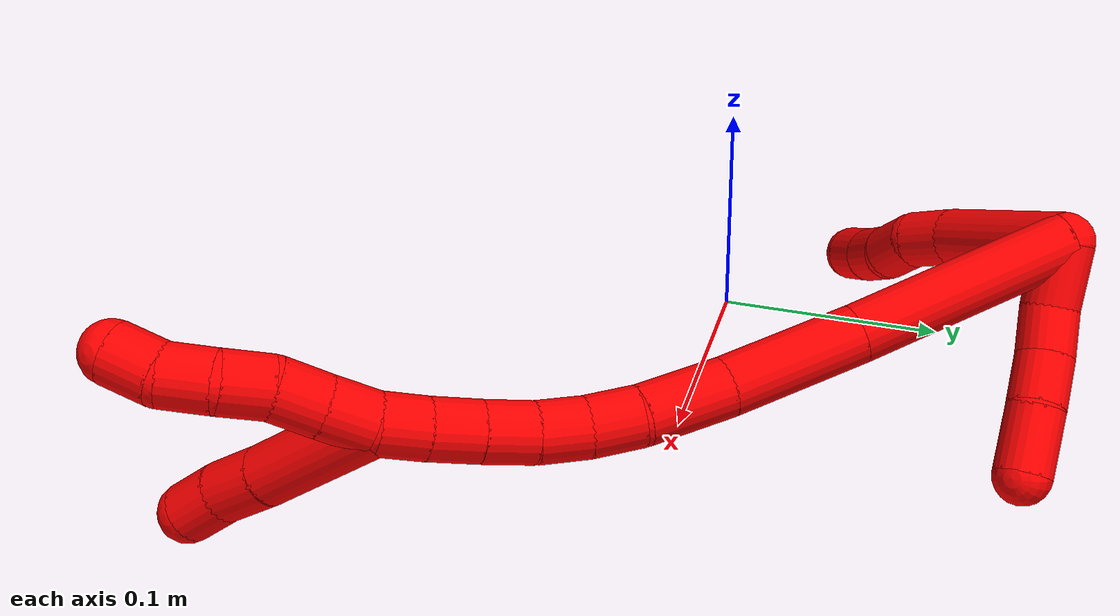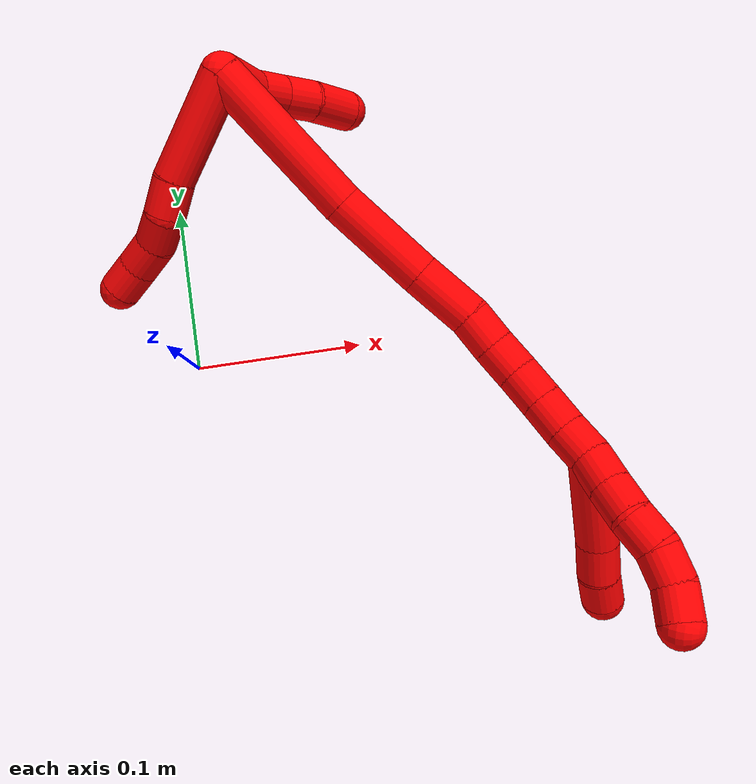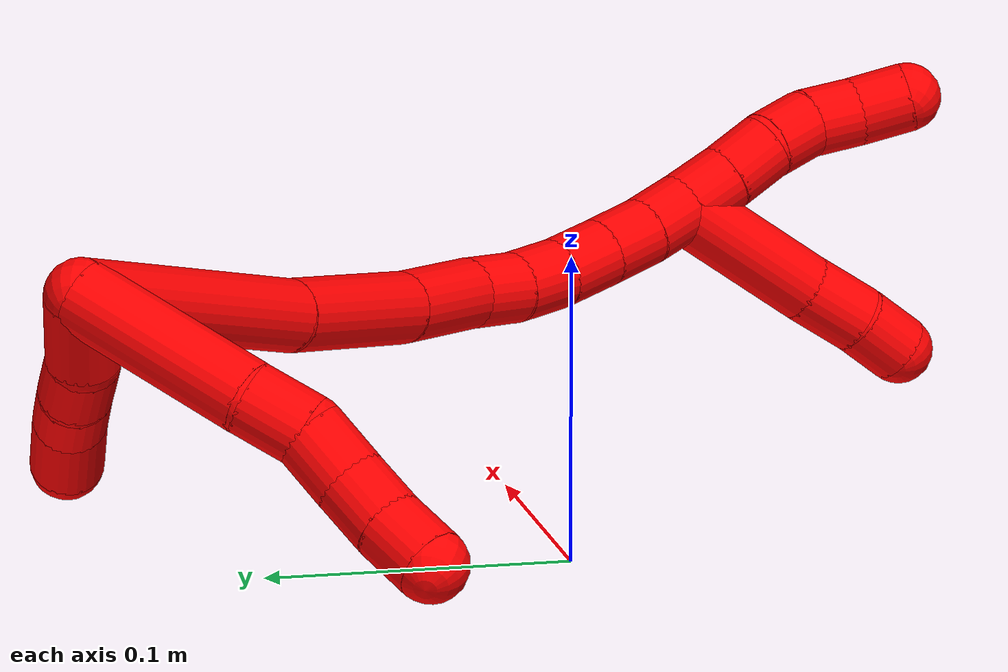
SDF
<sdf version="1.7">
 <world name="default">
  <model name="2">
   <static>0</static>
   <link name="2">
    <collision name="collision-cylinder-e_1_2_8">
     <pose>-0.007364 -0.029194 -0.014034 2.01891 -0.223541 -0.353261</pose>
     <geometry><cylinder><radius>0.0125</radius><length>0.066437</length></cylinder></geometry>
     <surface>
      <friction><ode><mu>1.16</mu><mu2>1.16</mu2><slip1>0</slip1><slip2>0</slip2></ode></friction>
      <contact><ode><kp>1e+06</kp><kd>1</kd><max_vel>0</max_vel><min_depth>0.001</min_depth></ode></contact>
     </surface>
    </collision>
    <visual name="visual-cylinder-e_1_2_8">
     <pose>-0.007364 -0.029194 -0.014034 2.01891 -0.223541 -0.353261</pose>
     <geometry><cylinder><radius>0.0125</radius><length>0.066437</length></cylinder></geometry>
     <material><ambient>1 0 0 1</ambient></material>
    </visual>
    <collision name="collision-cylinder-e_2_8_9">
     <pose>-0.016316 -0.068767 -0.031329 1.87513 -0.144906 -0.197106</pose>
     <geometry><cylinder><radius>0.0125</radius><length>0.021989</length></cylinder></geometry>
     <surface>
      <friction><ode><mu>1.16</mu><mu2>1.16</mu2><slip1>0</slip1><slip2>0</slip2></ode></friction>
      <contact><ode><kp>1e+06</kp><kd>1</kd><max_vel>0</max_vel><min_depth>0.001</min_depth></ode></contact>
     </surface>
    </collision>
    <visual name="visual-cylinder-e_2_8_9">
     <pose>-0.016316 -0.068767 -0.031329 1.87513 -0.144906 -0.197106</pose>
     <geometry><cylinder><radius>0.0125</radius><length>0.021989</length></cylinder></geometry>
     <material><ambient>1 0 0 1</ambient></material>
    </visual>
    <collision name="collision-cylinder-e_3_9_10">
     <pose>-0.016791 -0.088171 -0.039972 2.1086 0.105474 0.185359</pose>
     <geometry><cylinder><radius>0.0125</radius><length>0.021133</length></cylinder></geometry>
     <surface>
      <friction><ode><mu>1.16</mu><mu2>1.16</mu2><slip1>0</slip1><slip2>0</slip2></ode></friction>
      <contact><ode><kp>1e+06</kp><kd>1</kd><max_vel>0</max_vel><min_depth>0.001</min_depth></ode></contact>
     </surface>
    </collision>
    <visual name="visual-cylinder-e_3_9_10">
     <pose>-0.016791 -0.088171 -0.039972 2.1086 0.105474 0.185359</pose>
     <geometry><cylinder><radius>0.0125</radius><length>0.021133</length></cylinder></geometry>
     <material><ambient>1 0 0 1</ambient></material>
    </visual>
    <collision name="collision-cylinder-e_4_10_11">
     <pose>-0.016672 -0.10476 -0.05214 2.30199 -0.097495 -0.217744</pose>
     <geometry><cylinder><radius>0.0125</radius><length>0.02042</length></cylinder></geometry>
     <surface>
      <friction><ode><mu>1.16</mu><mu2>1.16</mu2><slip1>0</slip1><slip2>0</slip2></ode></friction>
      <contact><ode><kp>1e+06</kp><kd>1</kd><max_vel>0</max_vel><min_depth>0.001</min_depth></ode></contact>
     </surface>
    </collision>
    <visual name="visual-cylinder-e_4_10_11">
     <pose>-0.016672 -0.10476 -0.05214 2.30199 -0.097495 -0.217744</pose>
     <geometry><cylinder><radius>0.0125</radius><length>0.02042</length></cylinder></geometry>
     <material><ambient>1 0 0 1</ambient></material>
    </visual>
    <collision name="collision-cylinder-e_5_11_6">
     <pose>-0.019588 -0.119787 -0.065314 2.27879 -0.19323 -0.415024</pose>
     <geometry><cylinder><radius>0.0125</radius><length>0.02002</length></cylinder></geometry>
     <surface>
      <friction><ode><mu>1.16</mu><mu2>1.16</mu2><slip1>0</slip1><slip2>0</slip2></ode></friction>
      <contact><ode><kp>1e+06</kp><kd>1</kd><max_vel>0</max_vel><min_depth>0.001</min_depth></ode></contact>
     </surface>
    </collision>
    <visual name="visual-cylinder-e_5_11_6">
     <pose>-0.019588 -0.119787 -0.065314 2.27879 -0.19323 -0.415024</pose>
     <geometry><cylinder><radius>0.0125</radius><length>0.02002</length></cylinder></geometry>
     <material><ambient>1 0 0 1</ambient></material>
    </visual>
    <collision name="collision-cylinder-e_1_2_12">
     <pose>0.012885 -0.005692 0.000826 1.42664 1.15093 1.02302</pose>
     <geometry><cylinder><radius>0.0125</radius><length>0.028221</length></cylinder></geometry>
     <surface>
      <friction><ode><mu>1.16</mu><mu2>1.16</mu2><slip1>0</slip1><slip2>0</slip2></ode></friction>
      <contact><ode><kp>1e+06</kp><kd>1</kd><max_vel>0</max_vel><min_depth>0.001</min_depth></ode></contact>
     </surface>
    </collision>
    <visual name="visual-cylinder-e_1_2_12">
     <pose>0.012885 -0.005692 0.000826 1.42664 1.15093 1.02302</pose>
     <geometry><cylinder><radius>0.0125</radius><length>0.028221</length></cylinder></geometry>
     <material><ambient>1 0 0 1</ambient></material>
    </visual>
    <collision name="collision-cylinder-e_2_12_13">
     <pose>0.035568 -0.013512 0.004527 0.637129 1.22084 0.453482</pose>
     <geometry><cylinder><radius>0.0125</radius><length>0.020862</length></cylinder></geometry>
     <surface>
      <friction><ode><mu>1.16</mu><mu2>1.16</mu2><slip1>0</slip1><slip2>0</slip2></ode></friction>
      <contact><ode><kp>1e+06</kp><kd>1</kd><max_vel>0</max_vel><min_depth>0.001</min_depth></ode></contact>
     </surface>
    </collision>
    <visual name="visual-cylinder-e_2_12_13">
     <pose>0.035568 -0.013512 0.004527 0.637129 1.22084 0.453482</pose>
     <geometry><cylinder><radius>0.0125</radius><length>0.020862</length></cylinder></geometry>
     <material><ambient>1 0 0 1</ambient></material>
    </visual>
    <collision name="collision-cylinder-e_3_13_14">
     <pose>0.05521 -0.017964 0.012055 0.463327 1.08468 0.282419</pose>
     <geometry><cylinder><radius>0.0125</radius><length>0.022266</length></cylinder></geometry>
     <surface>
      <friction><ode><mu>1.16</mu><mu2>1.16</mu2><slip1>0</slip1><slip2>0</slip2></ode></friction>
      <contact><ode><kp>1e+06</kp><kd>1</kd><max_vel>0</max_vel><min_depth>0.001</min_depth></ode></contact>
     </surface>
    </collision>
    <visual name="visual-cylinder-e_3_13_14">
     <pose>0.05521 -0.017964 0.012055 0.463327 1.08468 0.282419</pose>
     <geometry><cylinder><radius>0.0125</radius><length>0.022266</length></cylinder></geometry>
     <material><ambient>1 0 0 1</ambient></material>
    </visual>
    <collision name="collision-cylinder-e_4_14_5">
     <pose>0.078057 -0.024341 0.021148 0.739761 1.13773 0.486002</pose>
     <geometry><cylinder><radius>0.0125</radius><length>0.028651</length></cylinder></geometry>
     <surface>
      <friction><ode><mu>1.16</mu><mu2>1.16</mu2><slip1>0</slip1><slip2>0</slip2></ode></friction>
      <contact><ode><kp>1e+06</kp><kd>1</kd><max_vel>0</max_vel><min_depth>0.001</min_depth></ode></contact>
     </surface>
    </collision>
    <visual name="visual-cylinder-e_4_14_5">
     <pose>0.078057 -0.024341 0.021148 0.739761 1.13773 0.486002</pose>
     <geometry><cylinder><radius>0.0125</radius><length>0.028651</length></cylinder></geometry>
     <material><ambient>1 0 0 1</ambient></material>
    </visual>
    <collision name="collision-cylinder-e_1_2_15">
     <pose>0.011339 -0.036468 0.031037 0.865673 0.23251 0.107815</pose>
     <geometry><cylinder><radius>0.0125</radius><length>0.098423</length></cylinder></geometry>
     <surface>
      <friction><ode><mu>1.16</mu><mu2>1.16</mu2><slip1>0</slip1><slip2>0</slip2></ode></friction>
      <contact><ode><kp>1e+06</kp><kd>1</kd><max_vel>0</max_vel><min_depth>0.001</min_depth></ode></contact>
     </surface>
    </collision>
    <visual name="visual-cylinder-e_1_2_15">
     <pose>0.011339 -0.036468 0.031037 0.865673 0.23251 0.107815</pose>
     <geometry><cylinder><radius>0.0125</radius><length>0.098423</length></cylinder></geometry>
     <material><ambient>1 0 0 1</ambient></material>
    </visual>
    <collision name="collision-cylinder-e_2_15_16">
     <pose>0.028599 -0.092847 0.083639 0.745549 0.19902 0.078047</pose>
     <geometry><cylinder><radius>0.0125</radius><length>0.059887</length></cylinder></geometry>
     <surface>
      <friction><ode><mu>1.16</mu><mu2>1.16</mu2><slip1>0</slip1><slip2>0</slip2></ode></friction>
      <contact><ode><kp>1e+06</kp><kd>1</kd><max_vel>0</max_vel><min_depth>0.001</min_depth></ode></contact>
     </surface>
    </collision>
    <visual name="visual-cylinder-e_2_15_16">
     <pose>0.028599 -0.092847 0.083639 0.745549 0.19902 0.078047</pose>
     <geometry><cylinder><radius>0.0125</radius><length>0.059887</length></cylinder></geometry>
     <material><ambient>1 0 0 1</ambient></material>
    </visual>
    <collision name="collision-cylinder-e_3_16_17">
     <pose>0.037159 -0.124322 0.119567 0.677856 0.142206 0.050206</pose>
     <geometry><cylinder><radius>0.0125</radius><length>0.037253</length></cylinder></geometry>
     <surface>
      <friction><ode><mu>1.16</mu><mu2>1.16</mu2><slip1>0</slip1><slip2>0</slip2></ode></friction>
      <contact><ode><kp>1e+06</kp><kd>1</kd><max_vel>0</max_vel><min_depth>0.001</min_depth></ode></contact>
     </surface>
    </collision>
    <visual name="visual-cylinder-e_3_16_17">
     <pose>0.037159 -0.124322 0.119567 0.677856 0.142206 0.050206</pose>
     <geometry><cylinder><radius>0.0125</radius><length>0.037253</length></cylinder></geometry>
     <material><ambient>1 0 0 1</ambient></material>
    </visual>
    <collision name="collision-cylinder-e_4_17_18">
     <pose>0.040118 -0.143812 0.141217 0.827374 0.029666 0.013025</pose>
     <geometry><cylinder><radius>0.0125</radius><length>0.021545</length></cylinder></geometry>
     <surface>
      <friction><ode><mu>1.16</mu><mu2>1.16</mu2><slip1>0</slip1><slip2>0</slip2></ode></friction>
      <contact><ode><kp>1e+06</kp><kd>1</kd><max_vel>0</max_vel><min_depth>0.001</min_depth></ode></contact>
     </surface>
    </collision>
    <visual name="visual-cylinder-e_4_17_18">
     <pose>0.040118 -0.143812 0.141217 0.827374 0.029666 0.013025</pose>
     <geometry><cylinder><radius>0.0125</radius><length>0.021545</length></cylinder></geometry>
     <material><ambient>1 0 0 1</ambient></material>
    </visual>
    <collision name="collision-cylinder-e_5_18_19">
     <pose>0.039734 -0.158612 0.156272 0.724367 -0.067732 -0.025672</pose>
     <geometry><cylinder><radius>0.0125</radius><length>0.02079</length></cylinder></geometry>
     <surface>
      <friction><ode><mu>1.16</mu><mu2>1.16</mu2><slip1>0</slip1><slip2>0</slip2></ode></friction>
      <contact><ode><kp>1e+06</kp><kd>1</kd><max_vel>0</max_vel><min_depth>0.001</min_depth></ode></contact>
     </surface>
    </collision>
    <visual name="visual-cylinder-e_5_18_19">
     <pose>0.039734 -0.158612 0.156272 0.724367 -0.067732 -0.025672</pose>
     <geometry><cylinder><radius>0.0125</radius><length>0.02079</length></cylinder></geometry>
     <material><ambient>1 0 0 1</ambient></material>
    </visual>
    <collision name="collision-cylinder-e_6_19_20">
     <pose>0.037016 -0.172029 0.172153 0.678742 -0.190895 -0.067571</pose>
     <geometry><cylinder><radius>0.0125</radius><length>0.021235</length></cylinder></geometry>
     <surface>
      <friction><ode><mu>1.16</mu><mu2>1.16</mu2><slip1>0</slip1><slip2>0</slip2></ode></friction>
      <contact><ode><kp>1e+06</kp><kd>1</kd><max_vel>0</max_vel><min_depth>0.001</min_depth></ode></contact>
     </surface>
    </collision>
    <visual name="visual-cylinder-e_6_19_20">
     <pose>0.037016 -0.172029 0.172153 0.678742 -0.190895 -0.067571</pose>
     <geometry><cylinder><radius>0.0125</radius><length>0.021235</length></cylinder></geometry>
     <material><ambient>1 0 0 1</ambient></material>
    </visual>
    <collision name="collision-cylinder-e_7_20_21">
     <pose>0.03273 -0.184905 0.188189 0.674264 -0.220384 -0.077523</pose>
     <geometry><cylinder><radius>0.0125</radius><length>0.020784</length></cylinder></geometry>
     <surface>
      <friction><ode><mu>1.16</mu><mu2>1.16</mu2><slip1>0</slip1><slip2>0</slip2></ode></friction>
      <contact><ode><kp>1e+06</kp><kd>1</kd><max_vel>0</max_vel><min_depth>0.001</min_depth></ode></contact>
     </surface>
    </collision>
    <visual name="visual-cylinder-e_7_20_21">
     <pose>0.03273 -0.184905 0.188189 0.674264 -0.220384 -0.077523</pose>
     <geometry><cylinder><radius>0.0125</radius><length>0.020784</length></cylinder></geometry>
     <material><ambient>1 0 0 1</ambient></material>
    </visual>
    <collision name="collision-cylinder-e_8_21_1">
     <pose>0.027861 -0.196681 0.204138 0.596064 -0.261586 -0.080772</pose>
     <geometry><cylinder><radius>0.0125</radius><length>0.020084</length></cylinder></geometry>
     <surface>
      <friction><ode><mu>1.16</mu><mu2>1.16</mu2><slip1>0</slip1><slip2>0</slip2></ode></friction>
      <contact><ode><kp>1e+06</kp><kd>1</kd><max_vel>0</max_vel><min_depth>0.001</min_depth></ode></contact>
     </surface>
    </collision>
    <visual name="visual-cylinder-e_8_21_1">
     <pose>0.027861 -0.196681 0.204138 0.596064 -0.261586 -0.080772</pose>
     <geometry><cylinder><radius>0.0125</radius><length>0.020084</length></cylinder></geometry>
     <material><ambient>1 0 0 1</ambient></material>
    </visual>
    <collision name="collision-cylinder-e_1_1_22">
     <pose>0.030864 -0.229743 0.213624 1.51803 0.199793 0.189582</pose>
     <geometry><cylinder><radius>0.0125</radius><length>0.056431</length></cylinder></geometry>
     <surface>
      <friction><ode><mu>1.16</mu><mu2>1.16</mu2><slip1>0</slip1><slip2>0</slip2></ode></friction>
      <contact><ode><kp>1e+06</kp><kd>1</kd><max_vel>0</max_vel><min_depth>0.001</min_depth></ode></contact>
     </surface>
    </collision>
    <visual name="visual-cylinder-e_1_1_22">
     <pose>0.030864 -0.229743 0.213624 1.51803 0.199793 0.189582</pose>
     <geometry><cylinder><radius>0.0125</radius><length>0.056431</length></cylinder></geometry>
     <material><ambient>1 0 0 1</ambient></material>
    </visual>
    <collision name="collision-cylinder-e_2_22_23">
     <pose>0.038096 -0.269012 0.215424 1.54148 0.139088 0.135081</pose>
     <geometry><cylinder><radius>0.0125</radius><length>0.023545</length></cylinder></geometry>
     <surface>
      <friction><ode><mu>1.16</mu><mu2>1.16</mu2><slip1>0</slip1><slip2>0</slip2></ode></friction>
      <contact><ode><kp>1e+06</kp><kd>1</kd><max_vel>0</max_vel><min_depth>0.001</min_depth></ode></contact>
     </surface>
    </collision>
    <visual name="visual-cylinder-e_2_22_23">
     <pose>0.038096 -0.269012 0.215424 1.54148 0.139088 0.135081</pose>
     <geometry><cylinder><radius>0.0125</radius><length>0.023545</length></cylinder></geometry>
     <material><ambient>1 0 0 1</ambient></material>
    </visual>
    <collision name="collision-cylinder-e_3_23_4">
     <pose>0.042452 -0.29027 0.216528 1.49156 0.275542 0.254766</pose>
     <geometry><cylinder><radius>0.0125</radius><length>0.020023</length></cylinder></geometry>
     <surface>
      <friction><ode><mu>1.16</mu><mu2>1.16</mu2><slip1>0</slip1><slip2>0</slip2></ode></friction>
      <contact><ode><kp>1e+06</kp><kd>1</kd><max_vel>0</max_vel><min_depth>0.001</min_depth></ode></contact>
     </surface>
    </collision>
    <visual name="visual-cylinder-e_3_23_4">
     <pose>0.042452 -0.29027 0.216528 1.49156 0.275542 0.254766</pose>
     <geometry><cylinder><radius>0.0125</radius><length>0.020023</length></cylinder></geometry>
     <material><ambient>1 0 0 1</ambient></material>
    </visual>
    <collision name="collision-cylinder-e_1_1_24">
     <pose>0.020592 -0.207416 0.21925 0.641273 -0.486111 -0.164321</pose>
     <geometry><cylinder><radius>0.0125</radius><length>0.02</length></cylinder></geometry>
     <surface>
      <friction><ode><mu>1.16</mu><mu2>1.16</mu2><slip1>0</slip1><slip2>0</slip2></ode></friction>
      <contact><ode><kp>1e+06</kp><kd>1</kd><max_vel>0</max_vel><min_depth>0.001</min_depth></ode></contact>
     </surface>
    </collision>
    <visual name="visual-cylinder-e_1_1_24">
     <pose>0.020592 -0.207416 0.21925 0.641273 -0.486111 -0.164321</pose>
     <geometry><cylinder><radius>0.0125</radius><length>0.02</length></cylinder></geometry>
     <material><ambient>1 0 0 1</ambient></material>
    </visual>
    <collision name="collision-cylinder-e_2_24_25">
     <pose>0.011099 -0.217539 0.233642 0.584545 -0.503119 -0.154352</pose>
     <geometry><cylinder><radius>0.0125</radius><length>0.02</length></cylinder></geometry>
     <surface>
      <friction><ode><mu>1.16</mu><mu2>1.16</mu2><slip1>0</slip1><slip2>0</slip2></ode></friction>
      <contact><ode><kp>1e+06</kp><kd>1</kd><max_vel>0</max_vel><min_depth>0.001</min_depth></ode></contact>
     </surface>
    </collision>
    <visual name="visual-cylinder-e_2_24_25">
     <pose>0.011099 -0.217539 0.233642 0.584545 -0.503119 -0.154352</pose>
     <geometry><cylinder><radius>0.0125</radius><length>0.02</length></cylinder></geometry>
     <material><ambient>1 0 0 1</ambient></material>
    </visual>
    <collision name="collision-cylinder-e_3_25_26">
     <pose>0.003684 -0.228112 0.248716 0.636213 -0.262301 -0.086817</pose>
     <geometry><cylinder><radius>0.0125</radius><length>0.02</length></cylinder></geometry>
     <surface>
      <friction><ode><mu>1.16</mu><mu2>1.16</mu2><slip1>0</slip1><slip2>0</slip2></ode></friction>
      <contact><ode><kp>1e+06</kp><kd>1</kd><max_vel>0</max_vel><min_depth>0.001</min_depth></ode></contact>
     </surface>
    </collision>
    <visual name="visual-cylinder-e_3_25_26">
     <pose>0.003684 -0.228112 0.248716 0.636213 -0.262301 -0.086817</pose>
     <geometry><cylinder><radius>0.0125</radius><length>0.02</length></cylinder></geometry>
     <material><ambient>1 0 0 1</ambient></material>
    </visual>
    <collision name="collision-cylinder-e_4_26_27">
     <pose>-0.001914 -0.241603 0.262041 0.948915 -0.305265 -0.157682</pose>
     <geometry><cylinder><radius>0.0125</radius><length>0.02</length></cylinder></geometry>
     <surface>
      <friction><ode><mu>1.16</mu><mu2>1.16</mu2><slip1>0</slip1><slip2>0</slip2></ode></friction>
      <contact><ode><kp>1e+06</kp><kd>1</kd><max_vel>0</max_vel><min_depth>0.001</min_depth></ode></contact>
     </surface>
    </collision>
    <visual name="visual-cylinder-e_4_26_27">
     <pose>-0.001914 -0.241603 0.262041 0.948915 -0.305265 -0.157682</pose>
     <geometry><cylinder><radius>0.0125</radius><length>0.02</length></cylinder></geometry>
     <material><ambient>1 0 0 1</ambient></material>
    </visual>
    <collision name="collision-cylinder-e_5_27_3">
     <pose>-0.01052 -0.256854 0.271118 1.13182 -0.594434 -0.384318</pose>
     <geometry><cylinder><radius>0.0125</radius><length>0.02</length></cylinder></geometry>
     <surface>
      <friction><ode><mu>1.16</mu><mu2>1.16</mu2><slip1>0</slip1><slip2>0</slip2></ode></friction>
      <contact><ode><kp>1e+06</kp><kd>1</kd><max_vel>0</max_vel><min_depth>0.001</min_depth></ode></contact>
     </surface>
    </collision>
    <visual name="visual-cylinder-e_5_27_3">
     <pose>-0.01052 -0.256854 0.271118 1.13182 -0.594434 -0.384318</pose>
     <geometry><cylinder><radius>0.0125</radius><length>0.02</length></cylinder></geometry>
     <material><ambient>1 0 0 1</ambient></material>
    </visual>
    <collision name="collision-sphere-3">
     <pose>-0.016121 -0.264353 0.274639 0 -0 0</pose>
     <geometry><sphere><radius>0.0125</radius></sphere></geometry>
     <surface>
      <friction><ode><mu>1.16</mu><mu2>1.16</mu2><slip1>0</slip1><slip2>0</slip2></ode></friction>
      <contact><ode><kp>1e+06</kp><kd>1</kd><max_vel>0</max_vel><min_depth>0.001</min_depth></ode></contact>
     </surface>
    </collision>
    <visual name="visual-sphere-3">
     <pose>-0.016121 -0.264353 0.274639 0 -0 0</pose>
     <geometry><sphere><radius>0.0125</radius></sphere></geometry>
     <material><ambient>1 0 0 1</ambient></material>
    </visual>
    <collision name="collision-sphere-27">
     <pose>-0.00492 -0.249355 0.267597 0 -0 0</pose>
     <geometry><sphere><radius>0.0125</radius></sphere></geometry>
     <surface>
      <friction><ode><mu>1.16</mu><mu2>1.16</mu2><slip1>0</slip1><slip2>0</slip2></ode></friction>
      <contact><ode><kp>1e+06</kp><kd>1</kd><max_vel>0</max_vel><min_depth>0.001</min_depth></ode></contact>
     </surface>
    </collision>
    <visual name="visual-sphere-27">
     <pose>-0.00492 -0.249355 0.267597 0 -0 0</pose>
     <geometry><sphere><radius>0.0125</radius></sphere></geometry>
     <material><ambient>1 0 0 1</ambient></material>
    </visual>
    <collision name="collision-sphere-26">
     <pose>0.001091 -0.23385 0.256485 0 -0 0</pose>
     <geometry><sphere><radius>0.0125</radius></sphere></geometry>
     <surface>
      <friction><ode><mu>1.16</mu><mu2>1.16</mu2><slip1>0</slip1><slip2>0</slip2></ode></friction>
      <contact><ode><kp>1e+06</kp><kd>1</kd><max_vel>0</max_vel><min_depth>0.001</min_depth></ode></contact>
     </surface>
    </collision>
    <visual name="visual-sphere-26">
     <pose>0.001091 -0.23385 0.256485 0 -0 0</pose>
     <geometry><sphere><radius>0.0125</radius></sphere></geometry>
     <material><ambient>1 0 0 1</ambient></material>
    </visual>
    <collision name="collision-sphere-25">
     <pose>0.006277 -0.222374 0.240948 0 -0 0</pose>
     <geometry><sphere><radius>0.0125</radius></sphere></geometry>
     <surface>
      <friction><ode><mu>1.16</mu><mu2>1.16</mu2><slip1>0</slip1><slip2>0</slip2></ode></friction>
      <contact><ode><kp>1e+06</kp><kd>1</kd><max_vel>0</max_vel><min_depth>0.001</min_depth></ode></contact>
     </surface>
    </collision>
    <visual name="visual-sphere-25">
     <pose>0.006277 -0.222374 0.240948 0 -0 0</pose>
     <geometry><sphere><radius>0.0125</radius></sphere></geometry>
     <material><ambient>1 0 0 1</ambient></material>
    </visual>
    <collision name="collision-sphere-24">
     <pose>0.01592 -0.212705 0.226335 0 -0 0</pose>
     <geometry><sphere><radius>0.0125</radius></sphere></geometry>
     <surface>
      <friction><ode><mu>1.16</mu><mu2>1.16</mu2><slip1>0</slip1><slip2>0</slip2></ode></friction>
      <contact><ode><kp>1e+06</kp><kd>1</kd><max_vel>0</max_vel><min_depth>0.001</min_depth></ode></contact>
     </surface>
    </collision>
    <visual name="visual-sphere-24">
     <pose>0.01592 -0.212705 0.226335 0 -0 0</pose>
     <geometry><sphere><radius>0.0125</radius></sphere></geometry>
     <material><ambient>1 0 0 1</ambient></material>
    </visual>
    <collision name="collision-sphere-4">
     <pose>0.045176 -0.299874 0.217291 0 -0 0</pose>
     <geometry><sphere><radius>0.0125</radius></sphere></geometry>
     <surface>
      <friction><ode><mu>1.16</mu><mu2>1.16</mu2><slip1>0</slip1><slip2>0</slip2></ode></friction>
      <contact><ode><kp>1e+06</kp><kd>1</kd><max_vel>0</max_vel><min_depth>0.001</min_depth></ode></contact>
     </surface>
    </collision>
    <visual name="visual-sphere-4">
     <pose>0.045176 -0.299874 0.217291 0 -0 0</pose>
     <geometry><sphere><radius>0.0125</radius></sphere></geometry>
     <material><ambient>1 0 0 1</ambient></material>
    </visual>
    <collision name="collision-sphere-23">
     <pose>0.039728 -0.280666 0.215766 0 -0 0</pose>
     <geometry><sphere><radius>0.0125</radius></sphere></geometry>
     <surface>
      <friction><ode><mu>1.16</mu><mu2>1.16</mu2><slip1>0</slip1><slip2>0</slip2></ode></friction>
      <contact><ode><kp>1e+06</kp><kd>1</kd><max_vel>0</max_vel><min_depth>0.001</min_depth></ode></contact>
     </surface>
    </collision>
    <visual name="visual-sphere-23">
     <pose>0.039728 -0.280666 0.215766 0 -0 0</pose>
     <geometry><sphere><radius>0.0125</radius></sphere></geometry>
     <material><ambient>1 0 0 1</ambient></material>
    </visual>
    <collision name="collision-sphere-22">
     <pose>0.036464 -0.257358 0.215082 0 -0 0</pose>
     <geometry><sphere><radius>0.0125</radius></sphere></geometry>
     <surface>
      <friction><ode><mu>1.16</mu><mu2>1.16</mu2><slip1>0</slip1><slip2>0</slip2></ode></friction>
      <contact><ode><kp>1e+06</kp><kd>1</kd><max_vel>0</max_vel><min_depth>0.001</min_depth></ode></contact>
     </surface>
    </collision>
    <visual name="visual-sphere-22">
     <pose>0.036464 -0.257358 0.215082 0 -0 0</pose>
     <geometry><sphere><radius>0.0125</radius></sphere></geometry>
     <material><ambient>1 0 0 1</ambient></material>
    </visual>
    <collision name="collision-sphere-1">
     <pose>0.025264 -0.202127 0.212165 0 -0 0</pose>
     <geometry><sphere><radius>0.0125</radius></sphere></geometry>
     <surface>
      <friction><ode><mu>1.16</mu><mu2>1.16</mu2><slip1>0</slip1><slip2>0</slip2></ode></friction>
      <contact><ode><kp>1e+06</kp><kd>1</kd><max_vel>0</max_vel><min_depth>0.001</min_depth></ode></contact>
     </surface>
    </collision>
    <visual name="visual-sphere-1">
     <pose>0.025264 -0.202127 0.212165 0 -0 0</pose>
     <geometry><sphere><radius>0.0125</radius></sphere></geometry>
     <material><ambient>1 0 0 1</ambient></material>
    </visual>
    <collision name="collision-sphere-21">
     <pose>0.030458 -0.191236 0.19611 0 -0 0</pose>
     <geometry><sphere><radius>0.0125</radius></sphere></geometry>
     <surface>
      <friction><ode><mu>1.16</mu><mu2>1.16</mu2><slip1>0</slip1><slip2>0</slip2></ode></friction>
      <contact><ode><kp>1e+06</kp><kd>1</kd><max_vel>0</max_vel><min_depth>0.001</min_depth></ode></contact>
     </surface>
    </collision>
    <visual name="visual-sphere-21">
     <pose>0.030458 -0.191236 0.19611 0 -0 0</pose>
     <geometry><sphere><radius>0.0125</radius></sphere></geometry>
     <material><ambient>1 0 0 1</ambient></material>
    </visual>
    <collision name="collision-sphere-6">
     <pose>-0.021511 -0.12725 -0.071702 0 -0 0</pose>
     <geometry><sphere><radius>0.0125</radius></sphere></geometry>
     <surface>
      <friction><ode><mu>1.16</mu><mu2>1.16</mu2><slip1>0</slip1><slip2>0</slip2></ode></friction>
      <contact><ode><kp>1e+06</kp><kd>1</kd><max_vel>0</max_vel><min_depth>0.001</min_depth></ode></contact>
     </surface>
    </collision>
    <visual name="visual-sphere-6">
     <pose>-0.021511 -0.12725 -0.071702 0 -0 0</pose>
     <geometry><sphere><radius>0.0125</radius></sphere></geometry>
     <material><ambient>1 0 0 1</ambient></material>
    </visual>
    <collision name="collision-sphere-11">
     <pose>-0.017666 -0.112324 -0.058925 0 -0 0</pose>
     <geometry><sphere><radius>0.0125</radius></sphere></geometry>
     <surface>
      <friction><ode><mu>1.16</mu><mu2>1.16</mu2><slip1>0</slip1><slip2>0</slip2></ode></friction>
      <contact><ode><kp>1e+06</kp><kd>1</kd><max_vel>0</max_vel><min_depth>0.001</min_depth></ode></contact>
     </surface>
    </collision>
    <visual name="visual-sphere-11">
     <pose>-0.017666 -0.112324 -0.058925 0 -0 0</pose>
     <geometry><sphere><radius>0.0125</radius></sphere></geometry>
     <material><ambient>1 0 0 1</ambient></material>
    </visual>
    <collision name="collision-sphere-10">
     <pose>-0.015679 -0.097196 -0.045354 0 -0 0</pose>
     <geometry><sphere><radius>0.0125</radius></sphere></geometry>
     <surface>
      <friction><ode><mu>1.16</mu><mu2>1.16</mu2><slip1>0</slip1><slip2>0</slip2></ode></friction>
      <contact><ode><kp>1e+06</kp><kd>1</kd><max_vel>0</max_vel><min_depth>0.001</min_depth></ode></contact>
     </surface>
    </collision>
    <visual name="visual-sphere-10">
     <pose>-0.015679 -0.097196 -0.045354 0 -0 0</pose>
     <geometry><sphere><radius>0.0125</radius></sphere></geometry>
     <material><ambient>1 0 0 1</ambient></material>
    </visual>
    <collision name="collision-sphere-9">
     <pose>-0.017903 -0.079147 -0.034589 0 -0 0</pose>
     <geometry><sphere><radius>0.0125</radius></sphere></geometry>
     <surface>
      <friction><ode><mu>1.16</mu><mu2>1.16</mu2><slip1>0</slip1><slip2>0</slip2></ode></friction>
      <contact><ode><kp>1e+06</kp><kd>1</kd><max_vel>0</max_vel><min_depth>0.001</min_depth></ode></contact>
     </surface>
    </collision>
    <visual name="visual-sphere-9">
     <pose>-0.017903 -0.079147 -0.034589 0 -0 0</pose>
     <geometry><sphere><radius>0.0125</radius></sphere></geometry>
     <material><ambient>1 0 0 1</ambient></material>
    </visual>
    <collision name="collision-sphere-2">
     <geometry><sphere><radius>0.0125</radius></sphere></geometry>
     <surface>
      <friction><ode><mu>1.16</mu><mu2>1.16</mu2><slip1>0</slip1><slip2>0</slip2></ode></friction>
      <contact><ode><kp>1e+06</kp><kd>1</kd><max_vel>0</max_vel><min_depth>0.001</min_depth></ode></contact>
     </surface>
    </collision>
    <visual name="visual-sphere-2">
     <geometry><sphere><radius>0.0125</radius></sphere></geometry>
     <material><ambient>1 0 0 1</ambient></material>
    </visual>
    <collision name="collision-sphere-19">
     <pose>0.039031 -0.165484 0.164039 0 -0 0</pose>
     <geometry><sphere><radius>0.0125</radius></sphere></geometry>
     <surface>
      <friction><ode><mu>1.16</mu><mu2>1.16</mu2><slip1>0</slip1><slip2>0</slip2></ode></friction>
      <contact><ode><kp>1e+06</kp><kd>1</kd><max_vel>0</max_vel><min_depth>0.001</min_depth></ode></contact>
     </surface>
    </collision>
    <visual name="visual-sphere-19">
     <pose>0.039031 -0.165484 0.164039 0 -0 0</pose>
     <geometry><sphere><radius>0.0125</radius></sphere></geometry>
     <material><ambient>1 0 0 1</ambient></material>
    </visual>
    <collision name="collision-sphere-8">
     <pose>-0.014728 -0.058388 -0.028069 0 -0 0</pose>
     <geometry><sphere><radius>0.0125</radius></sphere></geometry>
     <surface>
      <friction><ode><mu>1.16</mu><mu2>1.16</mu2><slip1>0</slip1><slip2>0</slip2></ode></friction>
      <contact><ode><kp>1e+06</kp><kd>1</kd><max_vel>0</max_vel><min_depth>0.001</min_depth></ode></contact>
     </surface>
    </collision>
    <visual name="visual-sphere-8">
     <pose>-0.014728 -0.058388 -0.028069 0 -0 0</pose>
     <geometry><sphere><radius>0.0125</radius></sphere></geometry>
     <material><ambient>1 0 0 1</ambient></material>
    </visual>
    <collision name="collision-sphere-12">
     <pose>0.02577 -0.011384 0.001653 0 -0 0</pose>
     <geometry><sphere><radius>0.0125</radius></sphere></geometry>
     <surface>
      <friction><ode><mu>1.16</mu><mu2>1.16</mu2><slip1>0</slip1><slip2>0</slip2></ode></friction>
      <contact><ode><kp>1e+06</kp><kd>1</kd><max_vel>0</max_vel><min_depth>0.001</min_depth></ode></contact>
     </surface>
    </collision>
    <visual name="visual-sphere-12">
     <pose>0.02577 -0.011384 0.001653 0 -0 0</pose>
     <geometry><sphere><radius>0.0125</radius></sphere></geometry>
     <material><ambient>1 0 0 1</ambient></material>
    </visual>
    <collision name="collision-sphere-13">
     <pose>0.045367 -0.015639 0.007402 0 -0 0</pose>
     <geometry><sphere><radius>0.0125</radius></sphere></geometry>
     <surface>
      <friction><ode><mu>1.16</mu><mu2>1.16</mu2><slip1>0</slip1><slip2>0</slip2></ode></friction>
      <contact><ode><kp>1e+06</kp><kd>1</kd><max_vel>0</max_vel><min_depth>0.001</min_depth></ode></contact>
     </surface>
    </collision>
    <visual name="visual-sphere-13">
     <pose>0.045367 -0.015639 0.007402 0 -0 0</pose>
     <geometry><sphere><radius>0.0125</radius></sphere></geometry>
     <material><ambient>1 0 0 1</ambient></material>
    </visual>
    <collision name="collision-sphere-14">
     <pose>0.065054 -0.020289 0.016708 0 -0 0</pose>
     <geometry><sphere><radius>0.0125</radius></sphere></geometry>
     <surface>
      <friction><ode><mu>1.16</mu><mu2>1.16</mu2><slip1>0</slip1><slip2>0</slip2></ode></friction>
      <contact><ode><kp>1e+06</kp><kd>1</kd><max_vel>0</max_vel><min_depth>0.001</min_depth></ode></contact>
     </surface>
    </collision>
    <visual name="visual-sphere-14">
     <pose>0.065054 -0.020289 0.016708 0 -0 0</pose>
     <geometry><sphere><radius>0.0125</radius></sphere></geometry>
     <material><ambient>1 0 0 1</ambient></material>
    </visual>
    <collision name="collision-sphere-5">
     <pose>0.09106 -0.028394 0.025589 0 -0 0</pose>
     <geometry><sphere><radius>0.0125</radius></sphere></geometry>
     <surface>
      <friction><ode><mu>1.16</mu><mu2>1.16</mu2><slip1>0</slip1><slip2>0</slip2></ode></friction>
      <contact><ode><kp>1e+06</kp><kd>1</kd><max_vel>0</max_vel><min_depth>0.001</min_depth></ode></contact>
     </surface>
    </collision>
    <visual name="visual-sphere-5">
     <pose>0.09106 -0.028394 0.025589 0 -0 0</pose>
     <geometry><sphere><radius>0.0125</radius></sphere></geometry>
     <material><ambient>1 0 0 1</ambient></material>
    </visual>
    <collision name="collision-sphere-15">
     <pose>0.022679 -0.072935 0.062074 0 -0 0</pose>
     <geometry><sphere><radius>0.0125</radius></sphere></geometry>
     <surface>
      <friction><ode><mu>1.16</mu><mu2>1.16</mu2><slip1>0</slip1><slip2>0</slip2></ode></friction>
      <contact><ode><kp>1e+06</kp><kd>1</kd><max_vel>0</max_vel><min_depth>0.001</min_depth></ode></contact>
     </surface>
    </collision>
    <visual name="visual-sphere-15">
     <pose>0.022679 -0.072935 0.062074 0 -0 0</pose>
     <geometry><sphere><radius>0.0125</radius></sphere></geometry>
     <material><ambient>1 0 0 1</ambient></material>
    </visual>
    <collision name="collision-sphere-16">
     <pose>0.034519 -0.112759 0.105205 0 -0 0</pose>
     <geometry><sphere><radius>0.0125</radius></sphere></geometry>
     <surface>
      <friction><ode><mu>1.16</mu><mu2>1.16</mu2><slip1>0</slip1><slip2>0</slip2></ode></friction>
      <contact><ode><kp>1e+06</kp><kd>1</kd><max_vel>0</max_vel><min_depth>0.001</min_depth></ode></contact>
     </surface>
    </collision>
    <visual name="visual-sphere-16">
     <pose>0.034519 -0.112759 0.105205 0 -0 0</pose>
     <geometry><sphere><radius>0.0125</radius></sphere></geometry>
     <material><ambient>1 0 0 1</ambient></material>
    </visual>
    <collision name="collision-sphere-17">
     <pose>0.039799 -0.135885 0.133929 0 -0 0</pose>
     <geometry><sphere><radius>0.0125</radius></sphere></geometry>
     <surface>
      <friction><ode><mu>1.16</mu><mu2>1.16</mu2><slip1>0</slip1><slip2>0</slip2></ode></friction>
      <contact><ode><kp>1e+06</kp><kd>1</kd><max_vel>0</max_vel><min_depth>0.001</min_depth></ode></contact>
     </surface>
    </collision>
    <visual name="visual-sphere-17">
     <pose>0.039799 -0.135885 0.133929 0 -0 0</pose>
     <geometry><sphere><radius>0.0125</radius></sphere></geometry>
     <material><ambient>1 0 0 1</ambient></material>
    </visual>
    <collision name="collision-sphere-18">
     <pose>0.040438 -0.151739 0.148505 0 -0 0</pose>
     <geometry><sphere><radius>0.0125</radius></sphere></geometry>
     <surface>
      <friction><ode><mu>1.16</mu><mu2>1.16</mu2><slip1>0</slip1><slip2>0</slip2></ode></friction>
      <contact><ode><kp>1e+06</kp><kd>1</kd><max_vel>0</max_vel><min_depth>0.001</min_depth></ode></contact>
     </surface>
    </collision>
    <visual name="visual-sphere-18">
     <pose>0.040438 -0.151739 0.148505 0 -0 0</pose>
     <geometry><sphere><radius>0.0125</radius></sphere></geometry>
     <material><ambient>1 0 0 1</ambient></material>
    </visual>
    <collision name="collision-sphere-20">
     <pose>0.035001 -0.178574 0.180268 0 -0 0</pose>
     <geometry><sphere><radius>0.0125</radius></sphere></geometry>
     <surface>
      <friction><ode><mu>1.16</mu><mu2>1.16</mu2><slip1>0</slip1><slip2>0</slip2></ode></friction>
      <contact><ode><kp>1e+06</kp><kd>1</kd><max_vel>0</max_vel><min_depth>0.001</min_depth></ode></contact>
     </surface>
    </collision>
    <visual name="visual-sphere-20">
     <pose>0.035001 -0.178574 0.180268 0 -0 0</pose>
     <geometry><sphere><radius>0.0125</radius></sphere></geometry>
     <material><ambient>1 0 0 1</ambient></material>
    </visual>
    <inertial>
     <pose>0.01935 -0.121542 0.097051 0 -0 0</pose>
     <mass>0.75</mass>
     <inertia>
      <ixx>0.000184</ixx>
      <ixy>0</ixy>
      <ixz>0</ixz>
      <iyy>4.9e-05</iyy>
      <iyz>0</iyz>
      <izz>0.000132</izz>
     </inertia>
    </inertial>
   </link>
   <pose>0.045249 0.150625 0.084528 0.790534 0.889213 0.546613</pose>
  </model>
 </world>
</sdf>
